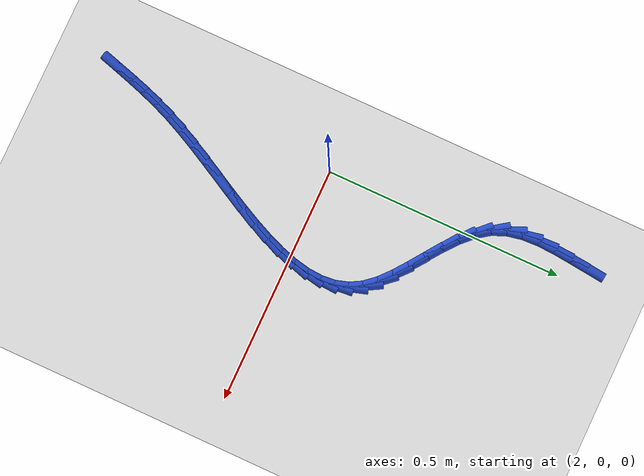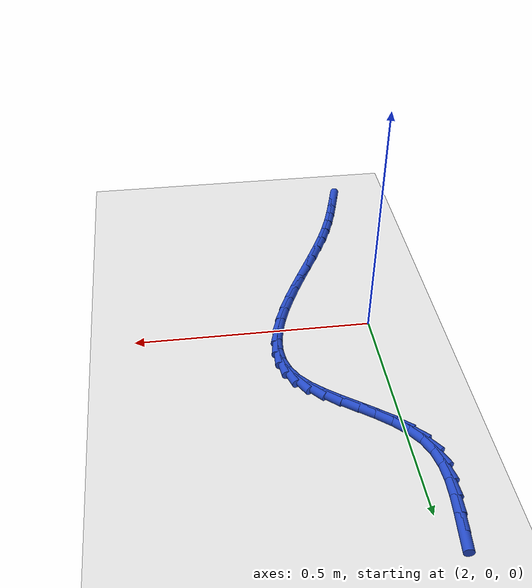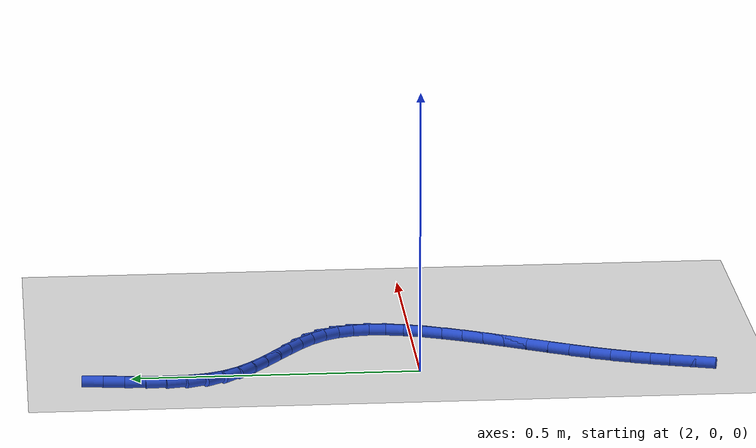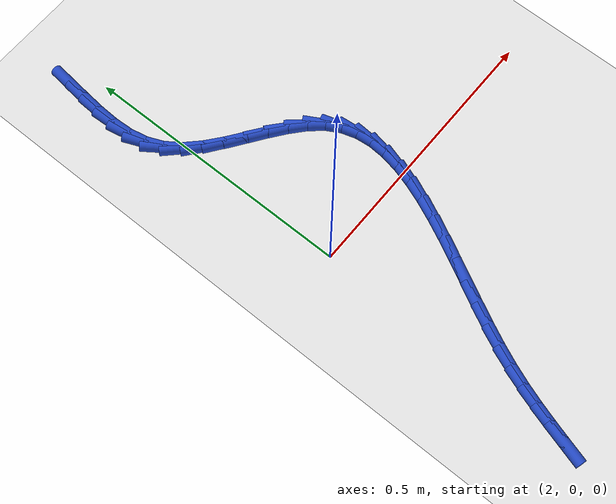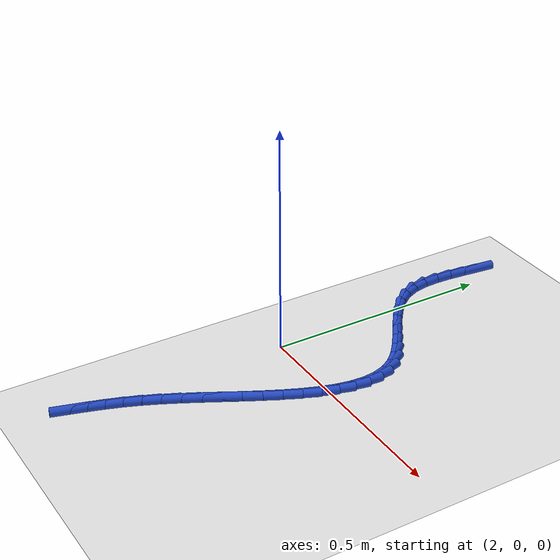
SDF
<sdf version="1.6">
 <world name="default">
  <model name="ground_plane">
   <static>1</static>
   <link name="link">
    <collision name="collision">
     <geometry><plane><normal>0 0 1</normal><size>100 100</size></plane></geometry>
     <surface><friction><ode><mu>100</mu><mu2>50</mu2></ode></friction></surface>
    </collision>
    <visual name="visual">
     <cast_shadows>0</cast_shadows>
     <geometry><plane><normal>0 0 1</normal><size>100 100</size></plane></geometry>
     <material>
      <script><uri>file://media/materials/scripts/gazebo.material</uri><name>Gazebo/WhiteGlow</name></script>
     </material>
    </visual>
   </link>
  </model>
  <model name="line">
   <link name="link_84">
    <pose>1.9625428394228048 0.5457268910471185 0.01 0 1.57 1.4595973419241728</pose>
    <collision name="collision">
     <geometry><cylinder><radius>0.01</radius><length>0.08</length></cylinder></geometry>
    </collision>
    <visual name="visual">
     <material>
      <script><name>Gazebo/Blue</name><uri>file://media/materials/scripts/gazebo.material</uri></script>
     </material>
     <geometry><cylinder><radius>0.01</radius><length>0.08</length></cylinder></geometry>
    </visual>
   </link>
   <link name="link_85">
    <pose>1.9584584049716753 0.5091475500340599 0.01 0 1.57 1.4747657924430475</pose>
    <collision name="collision">
     <geometry><cylinder><radius>0.01</radius><length>0.08</length></cylinder></geometry>
    </collision>
    <visual name="visual">
     <material>
      <script><name>Gazebo/Blue</name><uri>file://media/materials/scripts/gazebo.material</uri></script>
     </material>
     <geometry><cylinder><radius>0.01</radius><length>0.08</length></cylinder></geometry>
    </visual>
   </link>
   <link name="link_86">
    <pose>1.9549642853047082 0.4728739593845634 0.01 0 1.57 1.5272782116818082</pose>
    <collision name="collision">
     <geometry><cylinder><radius>0.01</radius><length>0.08</length></cylinder></geometry>
    </collision>
    <visual name="visual">
     <material>
      <script><name>Gazebo/Blue</name><uri>file://media/materials/scripts/gazebo.material</uri></script>
     </material>
     <geometry><cylinder><radius>0.01</radius><length>0.08</length></cylinder></geometry>
    </visual>
   </link>
   <link name="link_87">
    <pose>1.9534218360373048 0.4374524934022286 0.01 0 1.57 -1.5188025966677123</pose>
    <collision name="collision">
     <geometry><cylinder><radius>0.01</radius><length>0.08</length></cylinder></geometry>
    </collision>
    <visual name="visual">
     <material>
      <script><name>Gazebo/Blue</name><uri>file://media/materials/scripts/gazebo.material</uri></script>
     </material>
     <geometry><cylinder><radius>0.01</radius><length>0.08</length></cylinder></geometry>
    </visual>
   </link>
   <link name="link_88">
    <pose>1.95519241278487 0.40342952639065605 0.01 0 1.57 -1.3725214686014056</pose>
    <collision name="collision">
     <geometry><cylinder><radius>0.01</radius><length>0.08</length></cylinder></geometry>
    </collision>
    <visual name="visual">
     <material>
      <script><name>Gazebo/Blue</name><uri>file://media/materials/scripts/gazebo.material</uri></script>
     </material>
     <geometry><cylinder><radius>0.01</radius><length>0.08</length></cylinder></geometry>
    </visual>
   </link>
   <link name="link_89">
    <pose>1.9616373711628081 0.37135143265344617 0.01 0 1.57 -1.1716516513190787</pose>
    <collision name="collision">
     <geometry><cylinder><radius>0.01</radius><length>0.08</length></cylinder></geometry>
    </collision>
    <visual name="visual">
     <material>
      <script><name>Gazebo/Blue</name><uri>file://media/materials/scripts/gazebo.material</uri></script>
     </material>
     <geometry><cylinder><radius>0.01</radius><length>0.08</length></cylinder></geometry>
    </visual>
   </link>
   <link name="link_90">
    <pose>1.9741168622989902 0.3417641303141009 0.01 0 1.57 -0.951187355734402</pose>
    <collision name="collision">
     <geometry><cylinder><radius>0.01</radius><length>0.08</length></cylinder></geometry>
    </collision>
    <visual name="visual">
     <material>
      <script><name>Gazebo/Blue</name><uri>file://media/materials/scripts/gazebo.material</uri></script>
     </material>
     <geometry><cylinder><radius>0.01</radius><length>0.08</length></cylinder></geometry>
    </visual>
   </link>
   <link name="link_91">
    <pose>1.9932548007412672 0.3149346998439888 0.01 0 1.57 -0.7878995629009764</pose>
    <collision name="collision">
     <geometry><cylinder><radius>0.01</radius><length>0.08</length></cylinder></geometry>
    </collision>
    <visual name="visual">
     <material>
      <script><name>Gazebo/Blue</name><uri>file://media/materials/scripts/gazebo.material</uri></script>
     </material>
     <geometry><cylinder><radius>0.01</radius><length>0.08</length></cylinder></geometry>
    </visual>
   </link>
   <link name="link_92">
    <pose>2.017688953904014 0.2903780007320945 0.01 0 1.57 -0.6847818334524841</pose>
    <collision name="collision">
     <geometry><cylinder><radius>0.01</radius><length>0.08</length></cylinder></geometry>
    </collision>
    <visual name="visual">
     <material>
      <script><name>Gazebo/Blue</name><uri>file://media/materials/scripts/gazebo.material</uri></script>
     </material>
     <geometry><cylinder><radius>0.01</radius><length>0.08</length></cylinder></geometry>
    </visual>
   </link>
   <link name="link_93">
    <pose>2.0457255180236755 0.26748331526670605 0.01 0 1.57 -0.6302163446729163</pose>
    <collision name="collision">
     <geometry><cylinder><radius>0.01</radius><length>0.08</length></cylinder></geometry>
    </collision>
    <visual name="visual">
     <material>
      <script><name>Gazebo/Blue</name><uri>file://media/materials/scripts/gazebo.material</uri></script>
     </material>
     <geometry><cylinder><radius>0.01</radius><length>0.08</length></cylinder></geometry>
    </visual>
   </link>
   <link name="link_94">
    <pose>2.0756706893366967 0.2456399257361118 0.01 0 1.57 -0.6171684200470143</pose>
    <collision name="collision">
     <geometry><cylinder><radius>0.01</radius><length>0.08</length></cylinder></geometry>
    </collision>
    <visual name="visual">
     <material>
      <script><name>Gazebo/Blue</name><uri>file://media/materials/scripts/gazebo.material</uri></script>
     </material>
     <geometry><cylinder><radius>0.01</radius><length>0.08</length></cylinder></geometry>
    </visual>
   </link>
   <link name="link_95">
    <pose>2.1058306640795212 0.22423711442859978 0.01 0 1.57 -0.6448880681311772</pose>
    <collision name="collision">
     <geometry><cylinder><radius>0.01</radius><length>0.08</length></cylinder></geometry>
    </collision>
    <visual name="visual">
     <material>
      <script><name>Gazebo/Blue</name><uri>file://media/materials/scripts/gazebo.material</uri></script>
     </material>
     <geometry><cylinder><radius>0.01</radius><length>0.08</length></cylinder></geometry>
    </visual>
   </link>
   <link name="link_96">
    <pose>2.134511638488593 0.2026641636324584 0.01 0 1.57 -0.7195879466102981</pose>
    <collision name="collision">
     <geometry><cylinder><radius>0.01</radius><length>0.08</length></cylinder></geometry>
    </collision>
    <visual name="visual">
     <material>
      <script><name>Gazebo/Blue</name><uri>file://media/materials/scripts/gazebo.material</uri></script>
     </material>
     <geometry><cylinder><radius>0.01</radius><length>0.08</length></cylinder></geometry>
    </visual>
   </link>
   <link name="link_97">
    <pose>2.1600198088003566 0.18031035563597528 0.01 0 1.57 -0.8552109495819136</pose>
    <collision name="collision">
     <geometry><cylinder><radius>0.01</radius><length>0.08</length></cylinder></geometry>
    </collision>
    <visual name="visual">
     <material>
      <script><name>Gazebo/Blue</name><uri>file://media/materials/scripts/gazebo.material</uri></script>
     </material>
     <geometry><cylinder><radius>0.01</radius><length>0.08</length></cylinder></geometry>
    </visual>
   </link>
   <link name="link_98">
    <pose>2.1806613712512575 0.15656497272743897 0.01 0 1.57 -1.0588743570541745</pose>
    <collision name="collision">
     <geometry><cylinder><radius>0.01</radius><length>0.08</length></cylinder></geometry>
    </collision>
    <visual name="visual">
     <material>
      <script><name>Gazebo/Blue</name><uri>file://media/materials/scripts/gazebo.material</uri></script>
     </material>
     <geometry><cylinder><radius>0.01</radius><length>0.08</length></cylinder></geometry>
    </visual>
   </link>
   <link name="link_99">
    <pose>2.195065746102339 0.13092915552019868 0.01 0 1.57 -1.2769389078838531</pose>
    <collision name="collision">
     <geometry><cylinder><radius>0.01</radius><length>0.08</length></cylinder></geometry>
    </collision>
    <visual name="visual">
     <material>
      <script><name>Gazebo/Blue</name><uri>file://media/materials/scripts/gazebo.material</uri></script>
     </material>
     <geometry><cylinder><radius>0.01</radius><length>0.08</length></cylinder></geometry>
    </visual>
   </link>
   <link name="link_100">
    <pose>2.2033869935730785 0.10343167765947014 0.01 0 1.57 -1.4737141211478646</pose>
    <collision name="collision">
     <geometry><cylinder><radius>0.01</radius><length>0.08</length></cylinder></geometry>
    </collision>
    <visual name="visual">
     <material>
      <script><name>Gazebo/Blue</name><uri>file://media/materials/scripts/gazebo.material</uri></script>
     </material>
     <geometry><cylinder><radius>0.01</radius><length>0.08</length></cylinder></geometry>
    </visual>
   </link>
   <link name="link_101">
    <pose>2.2062282928893824 0.07425673966467523 0.01 0 1.57 1.5045248353090095</pose>
    <collision name="collision">
     <geometry><cylinder><radius>0.01</radius><length>0.08</length></cylinder></geometry>
    </collision>
    <visual name="visual">
     <material>
      <script><name>Gazebo/Blue</name><uri>file://media/materials/scripts/gazebo.material</uri></script>
     </material>
     <geometry><cylinder><radius>0.01</radius><length>0.08</length></cylinder></geometry>
    </visual>
   </link>
   <link name="link_102">
    <pose>2.204192886495387 0.04358856393320759 0.01 0 1.57 1.37600519094732</pose>
    <collision name="collision">
     <geometry><cylinder><radius>0.01</radius><length>0.08</length></cylinder></geometry>
    </collision>
    <visual name="visual">
     <material>
      <script><name>Gazebo/Blue</name><uri>file://media/materials/scripts/gazebo.material</uri></script>
     </material>
     <geometry><cylinder><radius>0.01</radius><length>0.08</length></cylinder></geometry>
    </visual>
   </link>
   <link name="link_103">
    <pose>2.1978840168352347 0.011611372862460731 0.01 0 1.57 1.2779960139973476</pose>
    <collision name="collision">
     <geometry><cylinder><radius>0.01</radius><length>0.08</length></cylinder></geometry>
    </collision>
    <visual name="visual">
     <material>
      <script><name>Gazebo/Blue</name><uri>file://media/materials/scripts/gazebo.material</uri></script>
     </material>
     <geometry><cylinder><radius>0.01</radius><length>0.08</length></cylinder></geometry>
    </visual>
   </link>
   <link name="link_104">
    <pose>2.1879049263530645 -0.021490611150171722 0.01 0 1.57 1.2048314279681072</pose>
    <collision name="collision">
     <geometry><cylinder><radius>0.01</radius><length>0.08</length></cylinder></geometry>
    </collision>
    <visual name="visual">
     <material>
      <script><name>Gazebo/Blue</name><uri>file://media/materials/scripts/gazebo.material</uri></script>
     </material>
     <geometry><cylinder><radius>0.01</radius><length>0.08</length></cylinder></geometry>
    </visual>
   </link>
   <link name="link_105">
    <pose>2.174858857493018 -0.05553316570729627 0.01 0 1.57 1.1515256180061222</pose>
    <collision name="collision">
     <geometry><cylinder><radius>0.01</radius><length>0.08</length></cylinder></geometry>
    </collision>
    <visual name="visual">
     <material>
      <script><name>Gazebo/Blue</name><uri>file://media/materials/scripts/gazebo.material</uri></script>
     </material>
     <geometry><cylinder><radius>0.01</radius><length>0.08</length></cylinder></geometry>
    </visual>
   </link>
   <link name="link_106">
    <pose>2.159349052699234 -0.09033206841151928 0.01 0 1.57 1.114303459355843</pose>
    <collision name="collision">
     <geometry><cylinder><radius>0.01</radius><length>0.08</length></cylinder></geometry>
    </collision>
    <visual name="visual">
     <material>
      <script><name>Gazebo/Blue</name><uri>file://media/materials/scripts/gazebo.material</uri></script>
     </material>
     <geometry><cylinder><radius>0.01</radius><length>0.08</length></cylinder></geometry>
    </visual>
   </link>
   <link name="link_107">
    <pose>2.141978754415853 -0.12570309686544717 0.01 0 1.57 1.0905529816076556</pose>
    <collision name="collision">
     <geometry><cylinder><radius>0.01</radius><length>0.08</length></cylinder></geometry>
    </collision>
    <visual name="visual">
     <material>
      <script><name>Gazebo/Blue</name><uri>file://media/materials/scripts/gazebo.material</uri></script>
     </material>
     <geometry><cylinder><radius>0.01</radius><length>0.08</length></cylinder></geometry>
    </visual>
   </link>
   <link name="link_108">
    <pose>2.123351205087015 -0.1614620286716864 0.01 0 1.57 1.0786442726560808</pose>
    <collision name="collision">
     <geometry><cylinder><radius>0.01</radius><length>0.08</length></cylinder></geometry>
    </collision>
    <visual name="visual">
     <material>
      <script><name>Gazebo/Blue</name><uri>file://media/materials/scripts/gazebo.material</uri></script>
     </material>
     <geometry><cylinder><radius>0.01</radius><length>0.08</length></cylinder></geometry>
    </visual>
   </link>
   <link name="link_109">
    <pose>2.1040696471568605 -0.19742464143284344 0.01 0 1.57 1.0777740296594</pose>
    <collision name="collision">
     <geometry><cylinder><radius>0.01</radius><length>0.08</length></cylinder></geometry>
    </collision>
    <visual name="visual">
     <material>
      <script><name>Gazebo/Blue</name><uri>file://media/materials/scripts/gazebo.material</uri></script>
     </material>
     <geometry><cylinder><radius>0.01</radius><length>0.08</length></cylinder></geometry>
    </visual>
   </link>
   <link name="link_110">
    <pose>2.084737323069529 -0.23340671275152464 0.01 0 1.57 1.0878799811004107</pose>
    <collision name="collision">
     <geometry><cylinder><radius>0.01</radius><length>0.08</length></cylinder></geometry>
    </collision>
    <visual name="visual">
     <material>
      <script><name>Gazebo/Blue</name><uri>file://media/materials/scripts/gazebo.material</uri></script>
     </material>
     <geometry><cylinder><radius>0.01</radius><length>0.08</length></cylinder></geometry>
    </visual>
   </link>
   <link name="link_111">
    <pose>2.0659574752691614 -0.2692240202303364 0.01 0 1.57 1.1096335950848792</pose>
    <collision name="collision">
     <geometry><cylinder><radius>0.01</radius><length>0.08</length></cylinder></geometry>
    </collision>
    <visual name="visual">
     <material>
      <script><name>Gazebo/Blue</name><uri>file://media/materials/scripts/gazebo.material</uri></script>
     </material>
     <geometry><cylinder><radius>0.01</radius><length>0.08</length></cylinder></geometry>
    </visual>
   </link>
   <link name="link_112">
    <pose>2.048333346199897 -0.3046923414718853 0.01 0 1.57 1.144510933503028</pose>
    <collision name="collision">
     <geometry><cylinder><radius>0.01</radius><length>0.08</length></cylinder></geometry>
    </collision>
    <visual name="visual">
     <material>
      <script><name>Gazebo/Blue</name><uri>file://media/materials/scripts/gazebo.material</uri></script>
     </material>
     <geometry><cylinder><radius>0.01</radius><length>0.08</length></cylinder></geometry>
    </visual>
   </link>
   <link name="link_113">
    <pose>2.0324681665298576 -0.3396274570765827 0.01 0 1.57 1.1902440250048683</pose>
    <collision name="collision">
     <geometry><cylinder><radius>0.01</radius><length>0.08</length></cylinder></geometry>
    </collision>
    <visual name="visual">
     <material>
      <script><name>Gazebo/Blue</name><uri>file://media/materials/scripts/gazebo.material</uri></script>
     </material>
     <geometry><cylinder><radius>0.01</radius><length>0.08</length></cylinder></geometry>
    </visual>
   </link>
   <link name="link_114">
    <pose>2.018758188511668 -0.3738978378552554 0.01 0 1.57 1.2311709894817713</pose>
    <collision name="collision">
     <geometry><cylinder><radius>0.01</radius><length>0.08</length></cylinder></geometry>
    </collision>
    <visual name="visual">
     <material>
      <script><name>Gazebo/Blue</name><uri>file://media/materials/scripts/gazebo.material</uri></script>
     </material>
     <geometry><cylinder><radius>0.01</radius><length>0.08</length></cylinder></geometry>
    </visual>
   </link>
   <link name="link_115">
    <pose>2.0068652087475787 -0.4075589239829825 0.01 0 1.57 1.2619298666243894</pose>
    <collision name="collision">
     <geometry><cylinder><radius>0.01</radius><length>0.08</length></cylinder></geometry>
    </collision>
    <visual name="visual">
     <material>
      <script><name>Gazebo/Blue</name><uri>file://media/materials/scripts/gazebo.material</uri></script>
     </material>
     <geometry><cylinder><radius>0.01</radius><length>0.08</length></cylinder></geometry>
    </visual>
   </link>
   <link name="link_116">
    <pose>1.9962881893711237 -0.44070760818147153 0.01 0 1.57 1.280961872879612</pose>
    <collision name="collision">
     <geometry><cylinder><radius>0.01</radius><length>0.08</length></cylinder></geometry>
    </collision>
    <visual name="visual">
     <material>
      <script><name>Gazebo/Blue</name><uri>file://media/materials/scripts/gazebo.material</uri></script>
     </material>
     <geometry><cylinder><radius>0.01</radius><length>0.08</length></cylinder></geometry>
    </visual>
   </link>
   <link name="link_117">
    <pose>1.9865260925158352 -0.47344078317243216 0.01 0 1.57 1.2871737837158943</pose>
    <collision name="collision">
     <geometry><cylinder><radius>0.01</radius><length>0.08</length></cylinder></geometry>
    </collision>
    <visual name="visual">
     <material>
      <script><name>Gazebo/Blue</name><uri>file://media/materials/scripts/gazebo.material</uri></script>
     </material>
     <geometry><cylinder><radius>0.01</radius><length>0.08</length></cylinder></geometry>
    </visual>
   </link>
  </model>
 </world>
</sdf>
